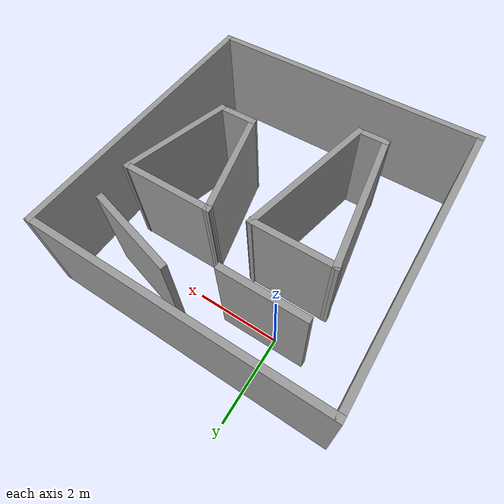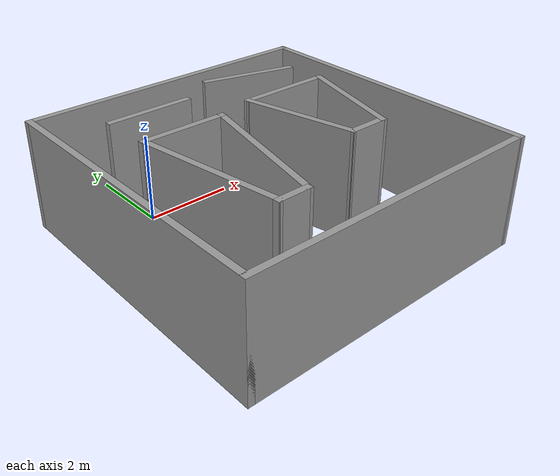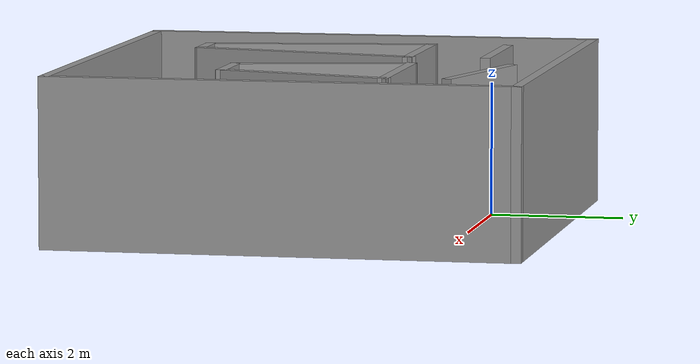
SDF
<?xml version='1.0'?>
<sdf version='1.7'>
  <model name='maze-like_map'>
    <pose>1.525 -2.195 0 0 -0 0</pose>
    <link name='Wall_0'>
      <collision name='Wall_0_Collision'>
        <geometry>
          <box>
            <size>7 0.15 2.5</size>
          </box>
        </geometry>
        <pose>0 0 1.25 0 -0 0</pose>
      </collision>
      <visual name='Wall_0_Visual'>
        <pose>0 0 1.25 0 -0 0</pose>
        <geometry>
          <box>
            <size>7 0.15 2.5</size>
          </box>
        </geometry>
        <material>
          <script>
            <uri>file://media/materials/scripts/gazebo.material</uri>
            <name>Gazebo/Grey</name>
          </script>
          <ambient>1 1 1 1</ambient>
        </material>
        <meta>
          <layer>0</layer>
        </meta>
      </visual>
      <pose>0 -3.425 0 0 -0 0</pose>
    </link>
    <link name='Wall_1'>
      <collision name='Wall_1_Collision'>
        <geometry>
          <box>
            <size>7 0.15 2.5</size>
          </box>
        </geometry>
        <pose>0 0 1.25 0 -0 0</pose>
      </collision>
      <visual name='Wall_1_Visual'>
        <pose>0 0 1.25 0 -0 0</pose>
        <geometry>
          <box>
            <size>7 0.15 2.5</size>
          </box>
        </geometry>
        <material>
          <script>
            <uri>file://media/materials/scripts/gazebo.material</uri>
            <name>Gazebo/Grey</name>
          </script>
          <ambient>1 1 1 1</ambient>
        </material>
        <meta>
          <layer>0</layer>
        </meta>
      </visual>
      <pose>3.425 0 0 0 -0 1.5708</pose>
    </link>
    <link name='Wall_12'>
      <collision name='Wall_12_Collision'>
        <geometry>
          <box>
            <size>0.797772 0.15 2.5</size>
          </box>
        </geometry>
        <pose>0 0 1.25 0 -0 0</pose>
      </collision>
      <visual name='Wall_12_Visual'>
        <pose>0 0 1.25 0 -0 0</pose>
        <geometry>
          <box>
            <size>0.797772 0.15 2.5</size>
          </box>
        </geometry>
        <material>
          <script>
            <uri>file://media/materials/scripts/gazebo.material</uri>
            <name>Gazebo/Grey</name>
          </script>
          <ambient>1 1 1 1</ambient>
        </material>
        <meta>
          <layer>0</layer>
        </meta>
      </visual>
      <pose>-1.36415 -2.17134 0 0 -0 0.008677</pose>
    </link>
    <link name='Wall_14'>
      <collision name='Wall_14_Collision'>
        <geometry>
          <box>
            <size>2.04028 0.15 2.5</size>
          </box>
        </geometry>
        <pose>0 0 1.25 0 -0 0</pose>
      </collision>
      <visual name='Wall_14_Visual'>
        <pose>0 0 1.25 0 -0 0</pose>
        <geometry>
          <box>
            <size>2.04028 0.15 2.5</size>
          </box>
        </geometry>
        <material>
          <script>
            <uri>file://media/materials/scripts/gazebo.material</uri>
            <name>Gazebo/Grey</name>
          </script>
          <ambient>1 1 1 1</ambient>
        </material>
        <meta>
          <layer>0</layer>
        </meta>
      </visual>
      <pose>-1.24829 1.14809 0 0 -0 3.13999</pose>
    </link>
    <link name='Wall_2'>
      <collision name='Wall_2_Collision'>
        <geometry>
          <box>
            <size>7 0.15 2.5</size>
          </box>
        </geometry>
        <pose>0 0 1.25 0 -0 0</pose>
      </collision>
      <visual name='Wall_2_Visual'>
        <pose>0 0 1.25 0 -0 0</pose>
        <geometry>
          <box>
            <size>7 0.15 2.5</size>
          </box>
        </geometry>
        <material>
          <script>
            <uri>file://media/materials/scripts/gazebo.material</uri>
            <name>Gazebo/Grey</name>
          </script>
          <ambient>1 1 1 1</ambient>
        </material>
        <meta>
          <layer>0</layer>
        </meta>
      </visual>
      <pose>0 3.425 0 0 -0 3.14159</pose>
    </link>
    <link name='Wall_20'>
      <collision name='Wall_20_Collision'>
        <geometry>
          <box>
            <size>3.51196 0.15 2.5</size>
          </box>
        </geometry>
        <pose>0 0 1.25 0 -0 0</pose>
      </collision>
      <visual name='Wall_20_Visual'>
        <pose>0 0 1.25 0 -0 0</pose>
        <geometry>
          <box>
            <size>3.51196 0.15 2.5</size>
          </box>
        </geometry>
        <material>
          <script>
            <uri>file://media/materials/scripts/gazebo.material</uri>
            <name>Gazebo/Grey</name>
          </script>
          <ambient>1 1 1 1</ambient>
        </material>
        <meta>
          <layer>0</layer>
        </meta>
      </visual>
      <pose>-1.92929 -0.512273 0 0 -0 1.7217</pose>
    </link>
    <link name='Wall_23'>
      <collision name='Wall_23_Collision'>
        <geometry>
          <box>
            <size>3.55477 0.15 2.5</size>
          </box>
        </geometry>
        <pose>0 0 1.25 0 -0 0</pose>
      </collision>
      <visual name='Wall_23_Visual'>
        <pose>0 0 1.25 0 -0 0</pose>
        <geometry>
          <box>
            <size>3.55477 0.15 2.5</size>
          </box>
        </geometry>
        <material>
          <script>
            <uri>file://media/materials/scripts/gazebo.material</uri>
            <name>Gazebo/Grey</name>
          </script>
          <ambient>1 1 1 1</ambient>
        </material>
        <meta>
          <layer>0</layer>
        </meta>
      </visual>
      <pose>-0.665994 -0.505258 0 0 -0 1.35601</pose>
    </link>
    <link name='Wall_25'>
      <collision name='Wall_25_Collision'>
        <geometry>
          <box>
            <size>1 0.15 2.5</size>
          </box>
        </geometry>
        <pose>0 0 1.25 0 -0 0</pose>
      </collision>
      <visual name='Wall_25_Visual'>
        <pose>0 0 1.25 0 -0 0</pose>
        <geometry>
          <box>
            <size>1 0.15 2.5</size>
          </box>
        </geometry>
        <material>
          <script>
            <uri>file://media/materials/scripts/gazebo.material</uri>
            <name>Gazebo/Grey</name>
          </script>
          <ambient>1 1 1 1</ambient>
        </material>
        <meta>
          <layer>0</layer>
        </meta>
      </visual>
      <pose>1.60425 -1.14104 0 0 -0 0</pose>
    </link>
    <link name='Wall_26'>
      <collision name='Wall_26_Collision'>
        <geometry>
          <box>
            <size>2.75 0.15 2.5</size>
          </box>
        </geometry>
        <pose>0 0 1.25 0 -0 0</pose>
      </collision>
      <visual name='Wall_26_Visual'>
        <pose>0 0 1.25 0 -0 0</pose>
        <geometry>
          <box>
            <size>2.75 0.15 2.5</size>
          </box>
        </geometry>
        <material>
          <script>
            <uri>file://media/materials/scripts/gazebo.material</uri>
            <name>Gazebo/Grey</name>
          </script>
          <ambient>1 1 1 1</ambient>
        </material>
        <meta>
          <layer>0</layer>
        </meta>
      </visual>
      <pose>2.36571 0.114661 0 0 -0 1.309</pose>
    </link>
    <link name='Wall_27'>
      <collision name='Wall_27_Collision'>
        <geometry>
          <box>
            <size>2.25 0.15 2.5</size>
          </box>
        </geometry>
        <pose>0 0 1.25 0 -0 0</pose>
      </collision>
      <visual name='Wall_27_Visual'>
        <pose>0 0 1.25 0 -0 0</pose>
        <geometry>
          <box>
            <size>2.25 0.15 2.5</size>
          </box>
        </geometry>
        <material>
          <script>
            <uri>file://media/materials/scripts/gazebo.material</uri>
            <name>Gazebo/Grey</name>
          </script>
          <ambient>1 1 1 1</ambient>
        </material>
        <meta>
          <layer>0</layer>
        </meta>
      </visual>
      <pose>1.65218 1.37037 0 0 -0 3.14159</pose>
    </link>
    <link name='Wall_28'>
      <collision name='Wall_28_Collision'>
        <geometry>
          <box>
            <size>2.72685 0.15 2.5</size>
          </box>
        </geometry>
        <pose>0 0 1.25 0 -0 0</pose>
      </collision>
      <visual name='Wall_28_Visual'>
        <pose>0 0 1.25 0 -0 0</pose>
        <geometry>
          <box>
            <size>2.72685 0.15 2.5</size>
          </box>
        </geometry>
        <material>
          <script>
            <uri>file://media/materials/scripts/gazebo.material</uri>
            <name>Gazebo/Grey</name>
          </script>
          <ambient>1 1 1 1</ambient>
        </material>
        <meta>
          <layer>0</layer>
        </meta>
      </visual>
      <pose>0.890711 0.114661 0 0 -0 -1.34494</pose>
    </link>
    <link name='Wall_3'>
      <collision name='Wall_3_Collision'>
        <geometry>
          <box>
            <size>7 0.15 2.5</size>
          </box>
        </geometry>
        <pose>0 0 1.25 0 -0 0</pose>
      </collision>
      <visual name='Wall_3_Visual'>
        <pose>0 0 1.25 0 -0 0</pose>
        <geometry>
          <box>
            <size>7 0.15 2.5</size>
          </box>
        </geometry>
        <material>
          <script>
            <uri>file://media/materials/scripts/gazebo.material</uri>
            <name>Gazebo/Grey</name>
          </script>
          <ambient>1 1 1 1</ambient>
        </material>
        <meta>
          <layer>0</layer>
        </meta>
      </visual>
      <pose>-3.425 0 0 0 -0 -1.5708</pose>
    </link>
    <link name='Wall_30'>
      <collision name='Wall_30_Collision'>
        <geometry>
          <box>
            <size>2 0.15 2.5</size>
          </box>
        </geometry>
        <pose>0 0 1.25 0 -0 0</pose>
      </collision>
      <visual name='Wall_30_Visual'>
        <pose>0 0 1.25 0 -0 0</pose>
        <geometry>
          <box>
            <size>2 0.15 2.5</size>
          </box>
        </geometry>
        <material>
          <script>
            <uri>file://media/materials/scripts/gazebo.material</uri>
            <name>Gazebo/Grey</name>
          </script>
          <ambient>1 1 1 1</ambient>
        </material>
        <meta>
          <layer>0</layer>
        </meta>
      </visual>
      <pose>-1.29909 2.30612 0 0 -0 0</pose>
    </link>
    <link name='Wall_32'>
      <collision name='Wall_32_Collision'>
        <geometry>
          <box>
            <size>2.25 0.15 2.5</size>
          </box>
        </geometry>
        <pose>0 0 1.25 0 -0 0</pose>
      </collision>
      <visual name='Wall_32_Visual'>
        <pose>0 0 1.25 0 -0 0</pose>
        <geometry>
          <box>
            <size>2.25 0.15 2.5</size>
          </box>
        </geometry>
        <material>
          <script>
            <uri>file://media/materials/scripts/gazebo.material</uri>
            <name>Gazebo/Grey</name>
          </script>
          <ambient>1 1 1 1</ambient>
        </material>
        <meta>
          <layer>0</layer>
        </meta>
      </visual>
      <pose>1.58195 2.5634 0 0 -0 -0.261799</pose>
    </link>
    <static>1</static>
  </model>
</sdf>
